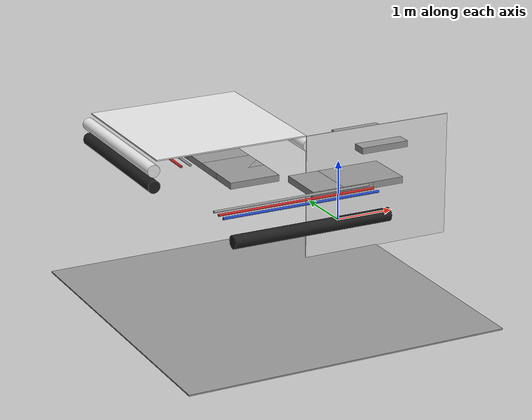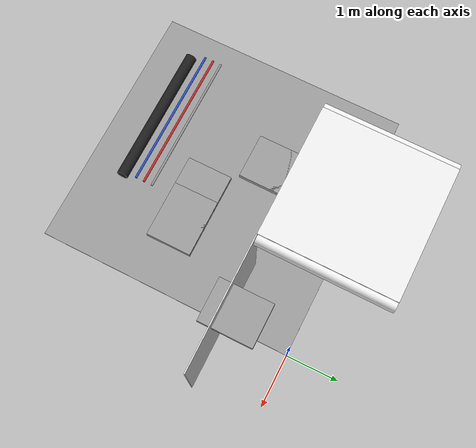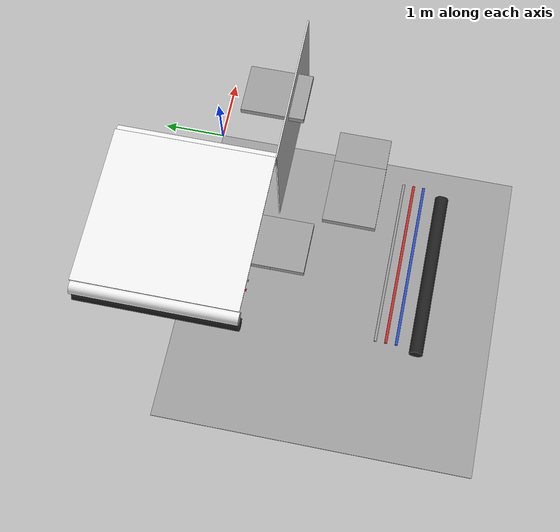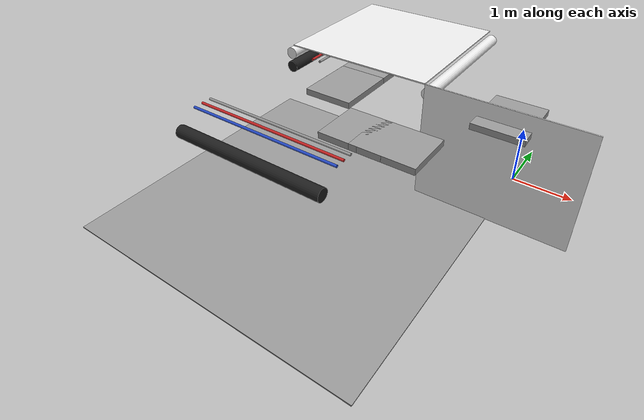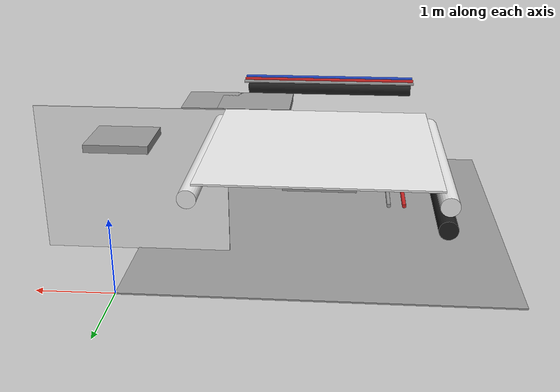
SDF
<sdf version="1.6">
 <world name="default">
  <model name="wall_back_0_0_0_0">
   <static>1</static>
   <pose>0.0 -1.25 1.0 0.0 0.0 0.0</pose>
   <link name="link">
    <collision name="collision"><geometry><box><size>2.5 0.02 2.0</size></box></geometry></collision>
    <visual name="visual">
     <material>
      <script><name>Gazebo/White</name><uri>file://media/materials/scripts/gazebo.material</uri></script>
     </material>
     <geometry><box><size>2.5 0.02 2.0</size></box></geometry>
    </visual>
   </link>
  </model>
  <model name="ceiling_1_0_0_1_0">
   <pose>0.0 -1.0 1.7 0.0 0.0 0.0</pose>
   <link name="link_1">
    <visual name="visual">
     <geometry><box><size>0.8 1 0.1</size></box></geometry>
     <material>
      <script><uri>file://media/materials/scripts/gazebo.material</uri><name>Gazebo/Grey</name></script>
     </material>
    </visual>
    <collision name="collision"><geometry><box><size>0.8 1 0.1</size></box></geometry></collision>
   </link>
   <static>1</static>
  </model>
  <model name="wall_top_-1_0_0_1">
   <static>1</static>
   <pose>-2.5 0.0 2.0 1.57 0.0 3.14</pose>
   <link name="link">
    <collision name="collision"><geometry><box><size>2.5 0.02 2.5</size></box></geometry></collision>
    <visual name="visual">
     <material>
      <script><name>Gazebo/White</name><uri>file://media/materials/scripts/gazebo.material</uri></script>
     </material>
     <geometry><box><size>2.5 0.02 2.5</size></box></geometry>
    </visual>
   </link>
  </model>
  <model name="ceiling_1_-1_0_0_1">
   <pose>-2.5 0.0 1.7 0.0 0.0 3.14</pose>
   <link name="link_1">
    <visual name="visual">
     <geometry><box><size>0.8 1 0.1</size></box></geometry>
     <material>
      <script><uri>file://media/materials/scripts/gazebo.material</uri><name>Gazebo/Grey</name></script>
     </material>
    </visual>
    <collision name="collision"><geometry><box><size>0.8 1 0.1</size></box></geometry></collision>
   </link>
   <static>1</static>
  </model>
  <model name="ceiling_1_-1_0_2_1">
   <pose>-2.5 -1.0 1.7 0.0 0.0 3.14</pose>
   <link name="link_1">
    <visual name="visual">
     <geometry><box><size>0.8 1 0.1</size></box></geometry>
     <material>
      <script><uri>file://media/materials/scripts/gazebo.material</uri><name>Gazebo/Grey</name></script>
     </material>
    </visual>
    <collision name="collision"><geometry><box><size>0.8 1 0.1</size></box></geometry></collision>
   </link>
   <static>1</static>
  </model>
  <model name="white_pipe_left_-1_0_0_1">
   <static>1</static>
   <pose>-2.5 0.0 1.84 0.0 0.0 3.14</pose>
   <link name="link_0">
    <visual name="visual">
     <pose>-1.3 0 0 1.57 0 0</pose>
     <geometry><cylinder><radius>0.1</radius><length>2.5</length></cylinder></geometry>
     <material>
      <script><uri>file://media/materials/scripts/gazebo.material</uri><name>Gazebo/White</name></script>
     </material>
    </visual>
    <collision name="collision">
     <pose>-1.3 0 0 1.57 0 0</pose>
     <geometry><cylinder><radius>0.1</radius><length>2.5</length></cylinder></geometry>
    </collision>
   </link>
  </model>
  <model name="white_pipe_right_-1_0_0_1">
   <static>1</static>
   <pose>-2.5 0.0 1.84 0.0 0.0 3.14</pose>
   <link name="link_0">
    <visual name="visual">
     <pose>1.3 0 0 1.57 0 0</pose>
     <geometry><cylinder><radius>0.1</radius><length>2.5</length></cylinder></geometry>
     <material>
      <script><uri>file://media/materials/scripts/gazebo.material</uri><name>Gazebo/White</name></script>
     </material>
    </visual>
    <collision name="collision">
     <pose>1.3 0 0 1.57 0 0</pose>
     <geometry><cylinder><radius>0.1</radius><length>2.5</length></cylinder></geometry>
    </collision>
   </link>
  </model>
  <model name="black_pipe_right_-1_0_0_1">
   <static>1</static>
   <pose>-2.5 0.0 1.84 0.0 0.0 3.14</pose>
   <link name="link_0">
    <visual name="visual">
     <pose>1.3 0 -0.25 1.57 0 0</pose>
     <geometry><cylinder><radius>0.1</radius><length>2.5</length></cylinder></geometry>
     <material>
      <script><uri>file://media/materials/scripts/gazebo.material</uri><name>Gazebo/Black</name></script>
     </material>
    </visual>
    <collision name="collision">
     <pose>1.3 0 -0.25 1.57 0 0</pose>
     <geometry><cylinder><radius>0.1</radius><length>2.5</length></cylinder></geometry>
    </collision>
   </link>
  </model>
  <model name="grey_pipe_right_-1_0_0_1">
   <static>1</static>
   <pose>-2.5 0.0 1.84 0.0 0.0 3.14</pose>
   <link name="link_0">
    <visual name="visual">
     <pose>0.7 0 0 1.57 0 0</pose>
     <geometry><cylinder><radius>0.02</radius><length>2.5</length></cylinder></geometry>
     <material>
      <script><uri>file://media/materials/scripts/gazebo.material</uri><name>Gazebo/Grey</name></script>
     </material>
    </visual>
    <collision name="collision">
     <pose>0.7 0 0 1.57 0 0</pose>
     <geometry><cylinder><radius>0.02</radius><length>2.5</length></cylinder></geometry>
    </collision>
   </link>
  </model>
  <model name="red_pipe_right_-1_0_0_1">
   <static>1</static>
   <pose>-2.5 0.0 1.84 0.0 0.0 3.14</pose>
   <link name="link_0">
    <visual name="visual">
     <pose>0.85 0 0 1.57 0 0</pose>
     <geometry><cylinder><radius>0.02</radius><length>2.5</length></cylinder></geometry>
     <material>
      <script><uri>file://media/materials/scripts/gazebo.material</uri><name>Gazebo/Red</name></script>
     </material>
    </visual>
    <collision name="collision">
     <pose>0.85 0 0 1.57 0 0</pose>
     <geometry><cylinder><radius>0.02</radius><length>2.5</length></cylinder></geometry>
    </collision>
   </link>
  </model>
  <model name="ceiling_1_-1_-1_0_3">
   <pose>-2.5 -1.5 1.7 0.0 0.0 3.14</pose>
   <link name="link_1">
    <visual name="visual">
     <geometry><box><size>0.8 1 0.1</size></box></geometry>
     <material>
      <script><uri>file://media/materials/scripts/gazebo.material</uri><name>Gazebo/Grey</name></script>
     </material>
    </visual>
    <collision name="collision"><geometry><box><size>0.8 1 0.1</size></box></geometry></collision>
   </link>
   <static>1</static>
  </model>
  <model name="ceiling_1_-1_-1_1_3">
   <pose>-1.5 -2.5 1.7 0.0 0.0 4.71</pose>
   <link name="link_1">
    <visual name="visual">
     <geometry><box><size>0.8 1 0.1</size></box></geometry>
     <material>
      <script><uri>file://media/materials/scripts/gazebo.material</uri><name>Gazebo/Grey</name></script>
     </material>
    </visual>
    <collision name="collision"><geometry><box><size>0.8 1 0.1</size></box></geometry></collision>
   </link>
   <static>1</static>
  </model>
  <model name="black_pipe_right_1_-1_-1_0_3">
   <static>1</static>
   <pose>-2.5 -2.5 1.84 0.0 0.0 4.71</pose>
   <link name="link_0">
    <visual name="visual">
     <pose>1.3 0 -0.25 1.57 0 0</pose>
     <geometry><cylinder><radius>0.1</radius><length>2.5</length></cylinder></geometry>
     <material>
      <script><uri>file://media/materials/scripts/gazebo.material</uri><name>Gazebo/Black</name></script>
     </material>
    </visual>
    <collision name="collision">
     <pose>1.3 0 -0.25 1.57 0 0</pose>
     <geometry><cylinder><radius>0.1</radius><length>2.5</length></cylinder></geometry>
    </collision>
   </link>
  </model>
  <model name="grey_pipe_right_1_-1_-1_0_3">
   <static>1</static>
   <pose>-2.5 -2.5 1.84 0.0 0.0 4.71</pose>
   <link name="link_0">
    <visual name="visual">
     <pose>0.7 0 0 1.57 0 0</pose>
     <geometry><cylinder><radius>0.02</radius><length>2.5</length></cylinder></geometry>
     <material>
      <script><uri>file://media/materials/scripts/gazebo.material</uri><name>Gazebo/Grey</name></script>
     </material>
    </visual>
    <collision name="collision">
     <pose>0.7 0 0 1.57 0 0</pose>
     <geometry><cylinder><radius>0.02</radius><length>2.5</length></cylinder></geometry>
    </collision>
   </link>
  </model>
  <model name="red_pipe_right_1_-1_-1_0_3">
   <static>1</static>
   <pose>-2.5 -2.5 1.84 0.0 0.0 4.71</pose>
   <link name="link_0">
    <visual name="visual">
     <pose>0.85 0 0 1.57 0 0</pose>
     <geometry><cylinder><radius>0.02</radius><length>2.5</length></cylinder></geometry>
     <material>
      <script><uri>file://media/materials/scripts/gazebo.material</uri><name>Gazebo/Red</name></script>
     </material>
    </visual>
    <collision name="collision">
     <pose>0.85 0 0 1.57 0 0</pose>
     <geometry><cylinder><radius>0.02</radius><length>2.5</length></cylinder></geometry>
    </collision>
   </link>
  </model>
  <model name="blue_pipe_right_1_-1_-1_0_3">
   <static>1</static>
   <pose>-2.5 -2.5 1.84 0.0 0.0 4.71</pose>
   <link name="link_0">
    <visual name="visual">
     <pose>1 0 0 1.57 0 0</pose>
     <geometry><cylinder><radius>0.02</radius><length>2.5</length></cylinder></geometry>
     <material>
      <script><uri>file://media/materials/scripts/gazebo.material</uri><name>Gazebo/Blue</name></script>
     </material>
    </visual>
    <collision name="collision">
     <pose>1 0 0 1.57 0 0</pose>
     <geometry><cylinder><radius>0.02</radius><length>2.5</length></cylinder></geometry>
    </collision>
   </link>
  </model>
  <model name="wall_bottom_-1_-1_0_3">
   <static>1</static>
   <pose>-2.5 -2.5 0.0 0.0 0.0 3.14</pose>
   <link name="link">
    <collision name="collision"><geometry><box><size>5.0 5.0 0.02</size></box></geometry></collision>
    <visual name="visual">
     <material>
      <script><name>Gazebo/Grey</name><uri>file://media/materials/scripts/gazebo.material</uri></script>
     </material>
     <geometry><box><size>5.0 5.0 0.02</size></box></geometry>
    </visual>
   </link>
  </model>
  <model name="ceiling_1_0_-1_1_1">
   <pose>-1.0 -2.5 1.7 0.0 0.0 -1.57</pose>
   <link name="link_1">
    <visual name="visual">
     <geometry><box><size>0.8 1 0.1</size></box></geometry>
     <material>
      <script><uri>file://media/materials/scripts/gazebo.material</uri><name>Gazebo/Grey</name></script>
     </material>
    </visual>
    <collision name="collision"><geometry><box><size>0.8 1 0.1</size></box></geometry></collision>
   </link>
   <static>1</static>
  </model>
 </world>
</sdf>
